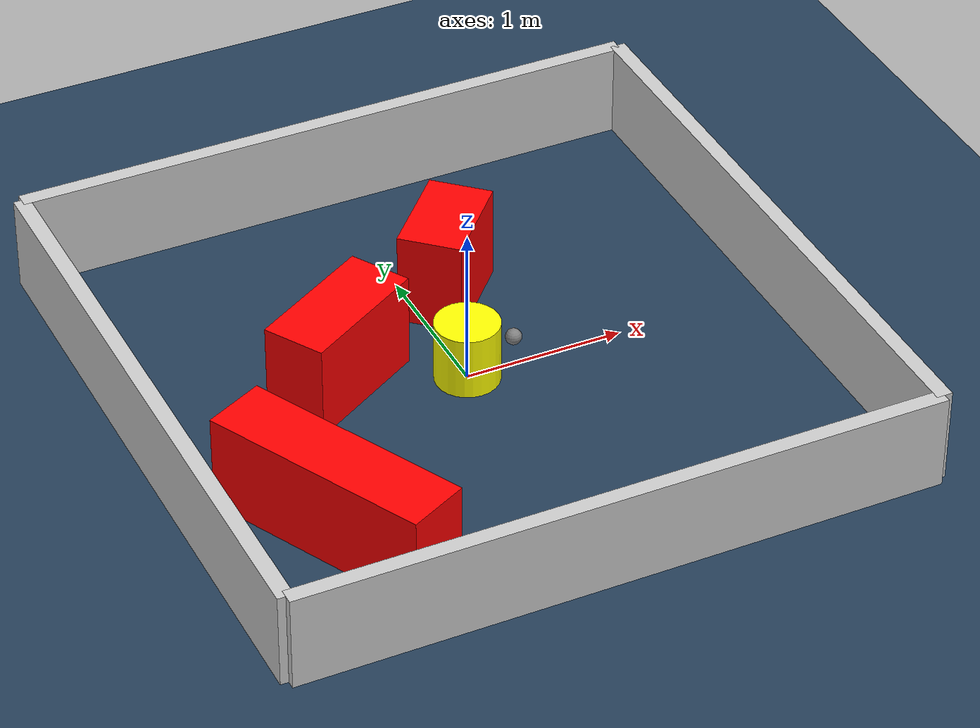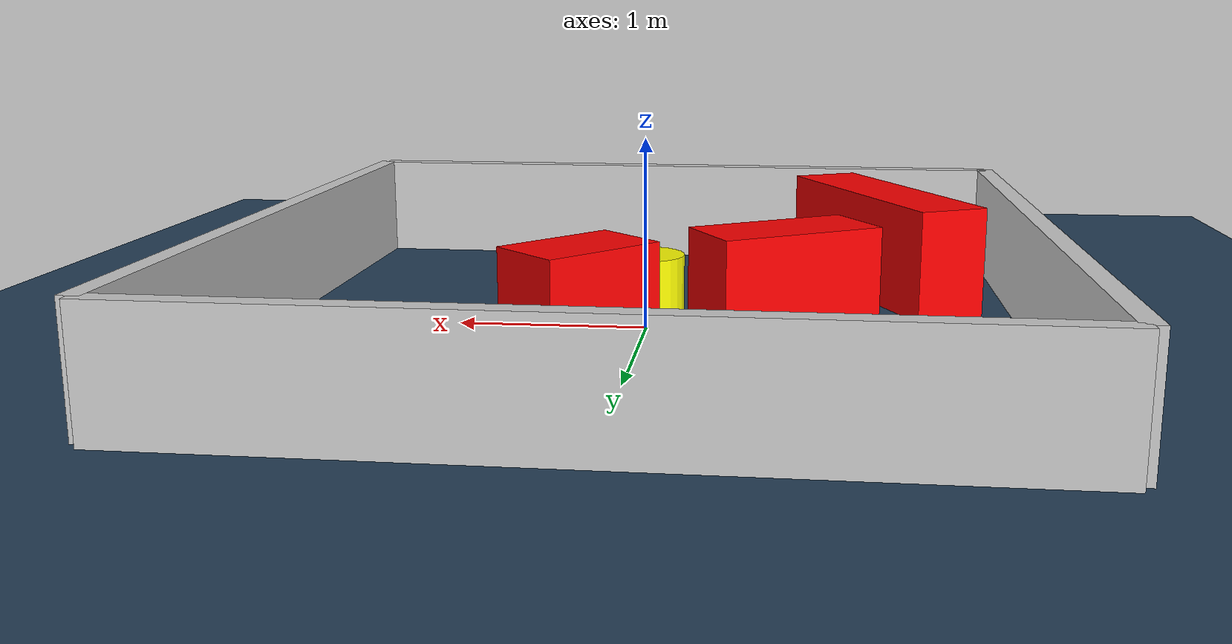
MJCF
<?xml version="1.0" ?>
<mujoco model="generated_environment">
  <option timestep="0.01" integrator="RK4" cone="elliptic"/>
  <default>
    <geom density="1"/>
  </default>
  <asset>
    <texture builtin="gradient" height="3072" rgb1="0.3 0.5 0.7" rgb2="0 0 0" type="skybox" width="512"/>
    <texture builtin="checker" height="300" mark="edge" markrgb="0.8 0.8 0.8" name="groundplane" rgb1="0.2 0.3 0.4" rgb2="0.1 0.2 0.3" type="2d" width="300"/>
    <material name="groundplane" reflectance="0.2" texrepeat="5 5" texture="groundplane" texuniform="true"/>
    <material name="robot" rgba="0.0 1.0 0.0 1"/>
  </asset>
  <worldbody>
    <light dir="0 0 -1" directional="true" pos="0 0 1.5"/>
    <geom condim="4" friction="1.0 0.005 0.001" material="groundplane" name="floor" size="0 0 0.05" type="plane"/>
    <body name="walls">
      <geom name="wall_1" condim="4" pos="-2.0 0.0 0.3" rgba="0.800000011920929 0.800000011920929 0.800000011920929 1.0" size="0.05 2.0 0.3" type="box"/>
      <geom name="wall_2" condim="4" pos="2.0 0.0 0.3" rgba="0.800000011920929 0.800000011920929 0.800000011920929 1.0" size="0.05 2.0 0.3" type="box"/>
      <geom name="wall_3" condim="4" pos="0.0 -2.0 0.3" rgba="0.800000011920929 0.800000011920929 0.800000011920929 1.0" size="2.0 0.05 0.3" type="box"/>
      <geom name="wall_4" condim="4" pos="0.0 2.0 0.3" rgba="0.800000011920929 0.800000011920929 0.800000011920929 1.0" size="2.0 0.05 0.3" type="box"/>
    </body>
    <body name="robot">
      <joint name="joint_x" type="slide" pos="0 0 0" axis="1 0 0"/>
      <joint name="joint_y" type="slide" pos="0 0 0" axis="0 1 0"/>
      <geom name="robot" type="sphere" pos="0.3 0.0 0.2" size="0.05" mass="5." friction="1.0 0.005 0.0001" condim="4" rgba="0.5 0.5 0.5 1.0"/>
      <site name="sensor_ball"/>
    </body>
    <body name="obstacle_movable_1">
      <geom name="obstacle_movable_1" condim="4" pos="0.0 0.0 0.2" euler="0 0 0.0" friction="1.0 0.005 0.001" rgba="1.0 1.0 0.0 1.0" size="0.2 0.2 0.0" type="cylinder" mass="0.1"/>
      <joint type="free"/>
    </body>
    <body name="obstacle_2_static">
      <geom name="obstacle_2_static" condim="4" pos="0.22523062799293747 0.7796557913424331 0.3" euler="0 0 227.42574759231906" friction="1.0 0.005 0.001" rgba="1 0 0 1" size="0.3183430288691772 0.2 0.3" type="box"/>
    </body>
    <body name="obstacle_3_static">
      <geom name="obstacle_3_static" condim="4" pos="-0.7164504705060106 0.23890275645601444 0.3" euler="0 0 30.64881339375401" friction="1.0 0.005 0.001" rgba="1 0 0 1" size="0.433579241891794 0.2 0.3" type="box"/>
    </body>
    <body name="obstacle_4_static">
      <geom name="obstacle_4_static" condim="4" pos="-1.2870005401710232 -1.016725601748138 0.3" euler="0 0 116.40485378281265" friction="1.0 0.005 0.001" rgba="1 0 0 1" size="0.7321000372142731 0.2 0.3" type="box"/>
    </body>
  </worldbody>
  <actuator>
    <motor name="actuator_x" joint="joint_x" gear="1" ctrlrange="-1 1"/>
    <motor name="actuator_y" joint="joint_y" gear="1" ctrlrange="-1 1"/>
  </actuator>
</mujoco>
